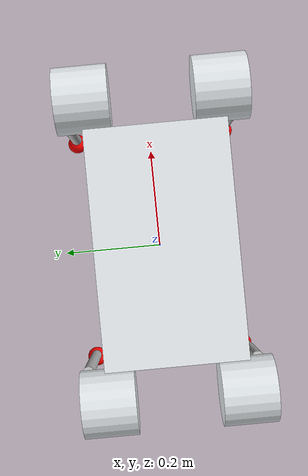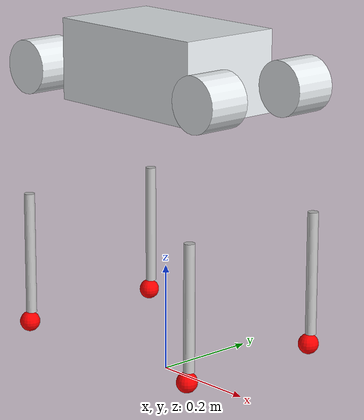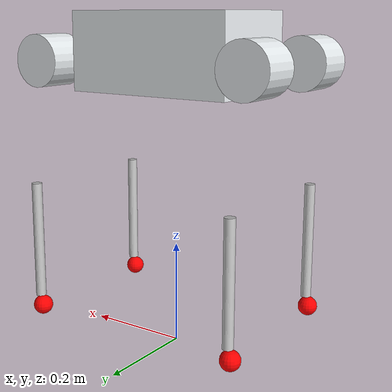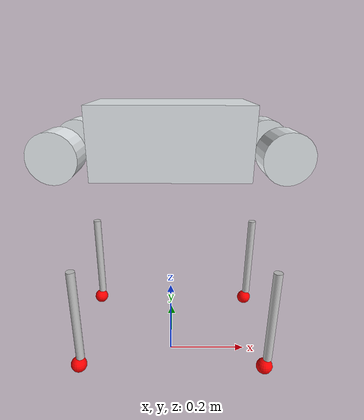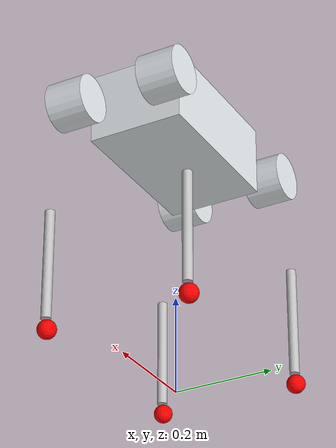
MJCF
<mujoco model="mevius">
  <compiler angle="radian"/>
  <worldbody>
    <body name="base_link" pos="0 0 0.5">
      <inertial pos="-0.00288686 0 0.0628888" quat="-0.00465096 0.716052 0.0137655 0.697895" mass="7.46951" diaginertia="0.111398 0.0895517 0.0413663"/>
      <joint name="base_joint" type="free" limited="false" actuatorfrclimited="false"/>
      <geom size="0.167 0.1 0.075" pos="0 0 0.075" type="box" rgba="0.898039 0.917647 0.929412 1"/>
      <body name="FR_scapula_link" pos="0.16405 -0.072 0.0565">
        <inertial pos="0.0516252 0.0119 0.000134643" quat="0.645629 0.00294725 0.00291678 0.76364" mass="0.792389" diaginertia="0.000956565 0.000655523 0.000624286"/>
        <joint name="FR_collar" pos="0 0 0" axis="1 0 0" range="-0.7854 0.7854" actuatorfrcrange="-25 25" armature="4.14e-3"/>
        <geom size="0.05 0.04" pos="0.06 -0.03 0" quat="0.707388 0.706825 0 0" type="cylinder" rgba="0.898039 0.917647 0.929412 1"/>
        <body name="FR_thigh_link" pos="0.0555 -0.01205 0">
          <inertial pos="-0.00458316 -0.0450237 -0.0462116" quat="0.707562 0.00759254 0.00814229 0.706564" mass="1.28036" diaginertia="0.00514578 0.00466467 0.000731296"/>
          <joint name="FR_hip" pos="0 0 0" axis="0 1 0" range="0 1.5708" actuatorfrcrange="-25 25" armature="4.14e-3"/>
          <body name="FR_calf_link" pos="0 -0.06555 -0.25">
            <inertial pos="0.00460409 3.43409e-06 -0.150039" quat="0.706597 0.00358695 0.00364389 0.707598" mass="0.151513" diaginertia="0.00106111 0.00105823 1.12276e-05"/>
            <joint name="FR_knee" pos="0 0 0" axis="0 1 0" range="-2.8745 -1.08" actuatorfrcrange="-25 25" armature="4.14e-3"/>
            <geom size="0.01 0.115" pos="0.008 0 -0.1" type="cylinder" rgba="0.752941 0.752941 0.752941 1"/>
            <geom size="0.019" pos="0.003 0 -0.235" rgba="1 0 0 1"/>
          </body>
        </body>
      </body>
      <body name="FL_scapula_link" pos="0.16405 0.072 0.0565">
        <inertial pos="0.0516252 -0.0119 0.000157365" quat="0.76357 0.0106903 0.00893315 0.645574" mass="0.792389" diaginertia="0.000956565 0.000655546 0.000624264"/>
        <joint name="FL_collar" pos="0 0 0" axis="1 0 0" range="-0.7854 0.7854" actuatorfrcrange="-25 25" armature="4.14e-3"/>
        <geom size="0.05 0.04" pos="0.06 0.03 0" quat="0.707388 0.706825 0 0" type="cylinder" rgba="0.898039 0.917647 0.929412 1"/>
        <body name="FL_thigh_link" pos="0.0555 0.01205 0">
          <inertial pos="-0.004596 0.0450237 -0.0462263" quat="0.706606 0.00830196 0.00769707 0.707517" mass="1.28036" diaginertia="0.00514578 0.00466509 0.000730872"/>
          <joint name="FL_hip" pos="0 0 0" axis="0 1 0" range="0 1.5708" actuatorfrcrange="-25 25" armature="4.14e-3"/>
          <body name="FL_calf_link" pos="0 0.06555 -0.25">
            <inertial pos="0.00460409 3.43409e-06 -0.150039" quat="0.706597 0.00358695 0.00364389 0.707598" mass="0.151513" diaginertia="0.00106111 0.00105823 1.12276e-05"/>
            <joint name="FL_knee" pos="0 0 0" axis="0 1 0" range="-2.8745 -1.08" actuatorfrcrange="-25 25" armature="4.14e-3"/>
            <geom size="0.01 0.115" pos="0.008 0 -0.1" type="cylinder" rgba="0.752941 0.752941 0.752941 1"/>
            <geom size="0.019" pos="0.003 0 -0.235" rgba="1 0 0 1"/>
          </body>
        </body>
      </body>
      <body name="BR_scapula_link" pos="-0.16405 -0.072 0.0565">
        <inertial pos="-0.051625 0.0119 -0.00013464" quat="0.76364 0.00291667 0.00294715 0.645629" mass="0.79239" diaginertia="0.000956567 0.000655526 0.000624288"/>
        <joint name="BR_collar" pos="0 0 0" axis="1 0 0" range="-0.7854 0.7854" actuatorfrcrange="-25 25" armature="4.14e-3"/>
        <geom size="0.05 0.04" pos="-0.06 -0.03 0" quat="0.707388 0.706825 0 0" type="cylinder" rgba="0.898039 0.917647 0.929412 1"/>
        <body name="BR_thigh_link" pos="-0.0555 -0.01205 0">
          <inertial pos="-0.0038406 -0.045024 -0.046019" quat="0.706497 0.00770251 0.00826389 0.707626" mass="1.2804" diaginertia="0.0051458 0.004665 0.000730982"/>
          <joint name="BR_hip" pos="0 0 0" axis="0 1 0" range="0 1.5708" actuatorfrcrange="-25 25" armature="4.14e-3"/>
          <body name="BR_calf_link" pos="0 -0.06555 -0.25">
            <inertial pos="0.00460409 3.43409e-06 -0.150039" quat="0.706597 0.00358695 0.00364389 0.707598" mass="0.151513" diaginertia="0.00106111 0.00105823 1.12276e-05"/>
            <joint name="BR_knee" pos="0 0 0" axis="0 1 0" range="-2.8745 -1.08" actuatorfrcrange="-25 25" armature="4.14e-3"/>
            <geom size="0.01 0.115" pos="0.008 0 -0.1" type="cylinder" rgba="0.752941 0.752941 0.752941 1"/>
            <geom size="0.019" pos="0.003 0 -0.235" rgba="1 0 0 1"/>
          </body>
        </body>
      </body>
      <body name="BL_scapula_link" pos="-0.16405 0.072 0.0565">
        <inertial pos="-0.0516252 -0.0119 -0.000157365" quat="0.645574 0.00893315 0.0106903 0.76357" mass="0.792389" diaginertia="0.000956565 0.000655546 0.000624264"/>
        <joint name="BL_collar" pos="0 0 0" axis="1 0 0" range="-0.7854 0.7854" actuatorfrcrange="-25 25" armature="4.14e-3"/>
        <geom size="0.05 0.04" pos="-0.06 0.03 0" quat="0.707388 0.706825 0 0" type="cylinder" rgba="0.898039 0.917647 0.929412 1"/>
        <body name="BL_thigh_link" pos="-0.0555 0.01205 0">
          <inertial pos="-0.00390162 0.0450237 -0.0460663" quat="0.707686 0.00808874 0.00759905 0.70644" mass="1.28036" diaginertia="0.00514578 0.00466466 0.000731305"/>
          <joint name="BL_hip" pos="0 0 0" axis="0 1 0" range="0 1.5708" actuatorfrcrange="-25 25" armature="4.14e-3"/>
          <body name="BL_calf_link" pos="0 0.06555 -0.25">
            <inertial pos="0.00460409 3.43409e-06 -0.150039" quat="0.706597 0.00358695 0.00364389 0.707598" mass="0.151513" diaginertia="0.00106111 0.00105823 1.12276e-05"/>
            <joint name="BL_knee" pos="0 0 0" axis="0 1 0" range="-2.8745 -1.08" actuatorfrcrange="-25 25" armature="4.14e-3"/>
            <geom size="0.01 0.115" pos="0.008 0 -0.1" type="cylinder" rgba="0.752941 0.752941 0.752941 1"/>
            <geom size="0.019" pos="0.003 0 -0.235" rgba="1 0 0 1"/>
          </body>
        </body>
      </body>
    </body>
  </worldbody>
</mujoco>
